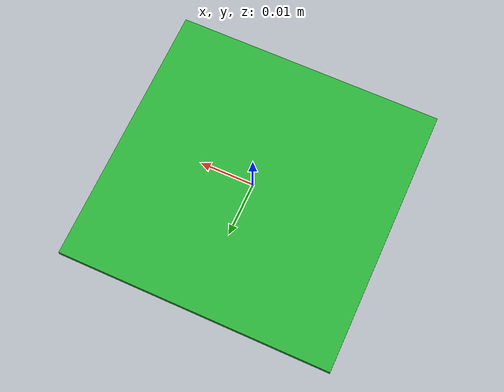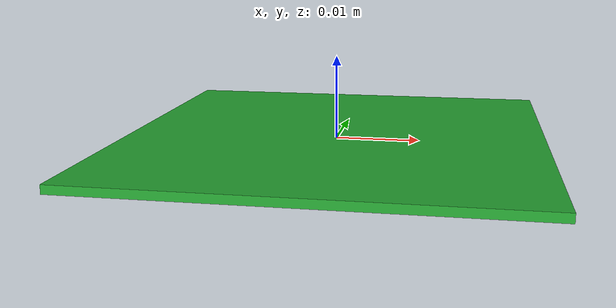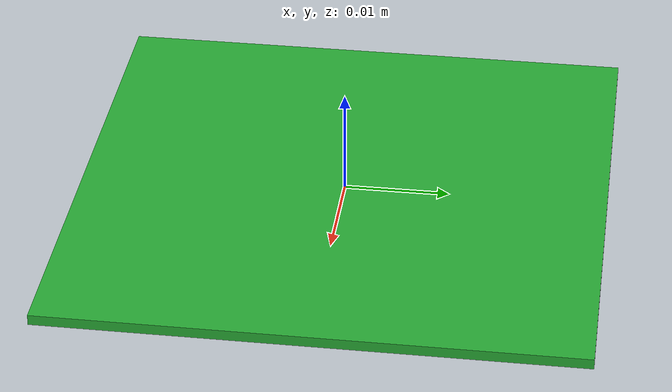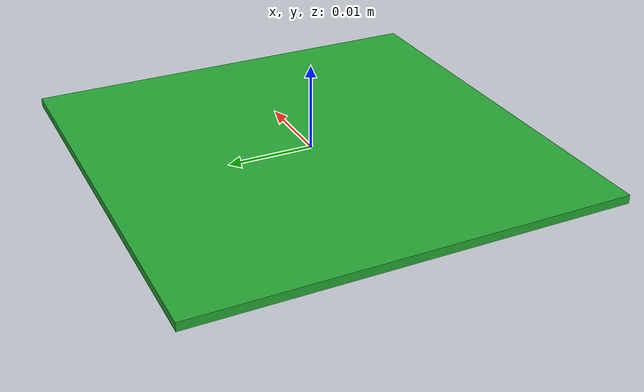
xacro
<?xml version="1.0"?>

<robot name="base" xmlns:xacro="https://www.ros.org/wiki/xacro">

  <!-- Define a number of dimensions using properties -->
  <xacro:property name="wheel_length" value="0.10" />
  <xacro:property name="wheel_radius" value="0.061" />
  <xacro:property name="wheel_offset_z" value="0.061" />

  <!-- define a wheel -->
  <xacro:macro name="wheel" params="suffix parent reflect color offset_x offset_y">
    <joint name="${parent}_${suffix}_wheel_joint" type="continuous">
      <axis xyz="0 0 1" />
      <limit effort="100" velocity="100"/>
      <safety_controller k_velocity="10" />
      <origin xyz="${offset_x} ${reflect * offset_y} ${wheel_offset_z}" rpy="${reflect * 1.57} 0 0" />
      <parent link="${parent}_link"/>
      <child link="${parent}_${suffix}_wheel_link"/>
    </joint>
    <link name="${parent}_${suffix}_wheel_link">
      <inertial>
        <mass value="0.5"/>
        <origin xyz="0 0 0" rpy="0 0 0" />
        <inertia ixx="0.0395416666667" ixy="0" ixz="0" iyy="0.106208333333" iyz="0" izz="0.106208333333"/>
      </inertial>
      <visual>
        <origin xyz="0 0 0" rpy="0 0 0" />
        <geometry>
          <cylinder radius="${wheel_radius}" length="${wheel_length}"/>
        </geometry>
        <material name="${color}" />
      </visual>
    </link>
    <gazebo reference="${parent}_${suffix}_wheel_link">
      <material>Gazebo/Black</material>
    </gazebo>

  </xacro:macro>

  <!-- The base xacro macro -->
  <xacro:macro name="base" params="name color">
    <link name="${name}_link">
      <visual>
        <origin xyz="0 0 0.21" rpy="0 0 0" />
        <geometry>
          <box size="0.44 0.3 0.1"/>
        </geometry>
        <material name="${color}" />
      </visual>
      <collision>
        <origin xyz="0 0 0.21" rpy="0 0 0" />
        <geometry>
          <box size="0.44 0.3 0.1"/>
        </geometry>
      </collision>
      <!-- Inertial properties -->
      <inertial>
        <mass value="5"/>
        <origin rpy="0 0 0" xyz="0 0 0.21"/>
        <inertia ixx="0.0395416666667" ixy="0" ixz="0" iyy="0.106208333333" iyz="0" izz="0.106208333333"/>
      </inertial>
    </link>
    <joint name="${name}_joint" type="fixed">
      <origin xyz="0 0 0" rpy="0 0 0" />
      <parent link="base_footprint"/>
      <child link="${name}_link" />
    </joint>
    <gazebo reference="${name}_link">
      <material>Gazebo/Yellow</material>
    </gazebo>
  </xacro:macro>

  <link name="base_footprint">
      <visual>
        <origin xyz="0 0 0" rpy="0 0 0" />
        <geometry>
          <box size="0.05 0.05 0.001" />
        </geometry>
        <material name="TransparentGreen" />
      </visual>
  </link>
</robot>
